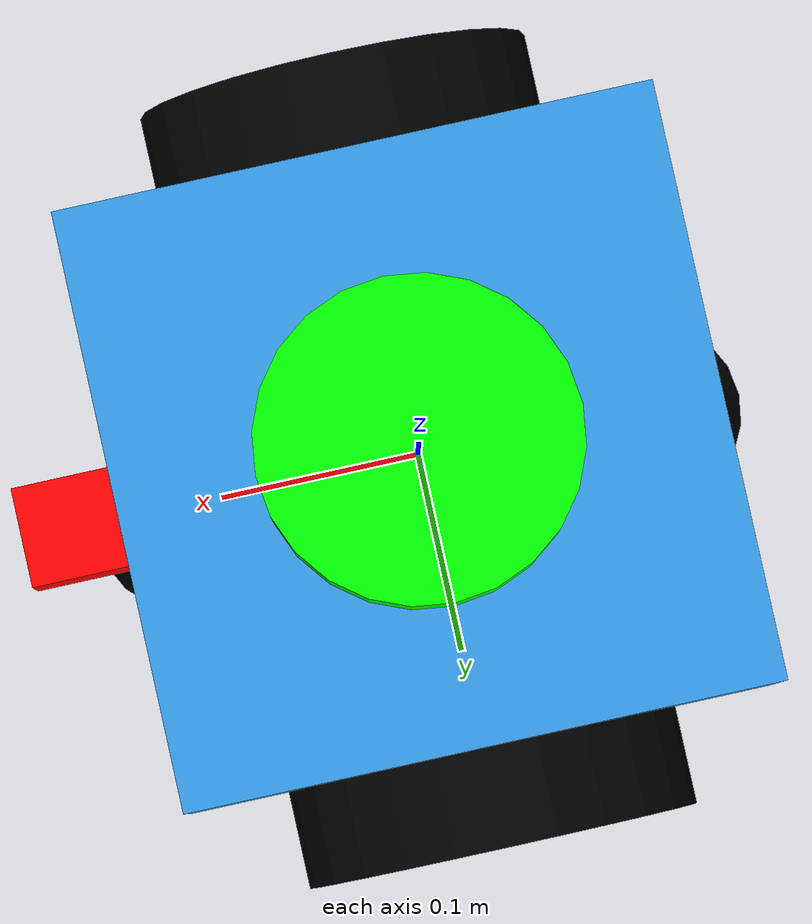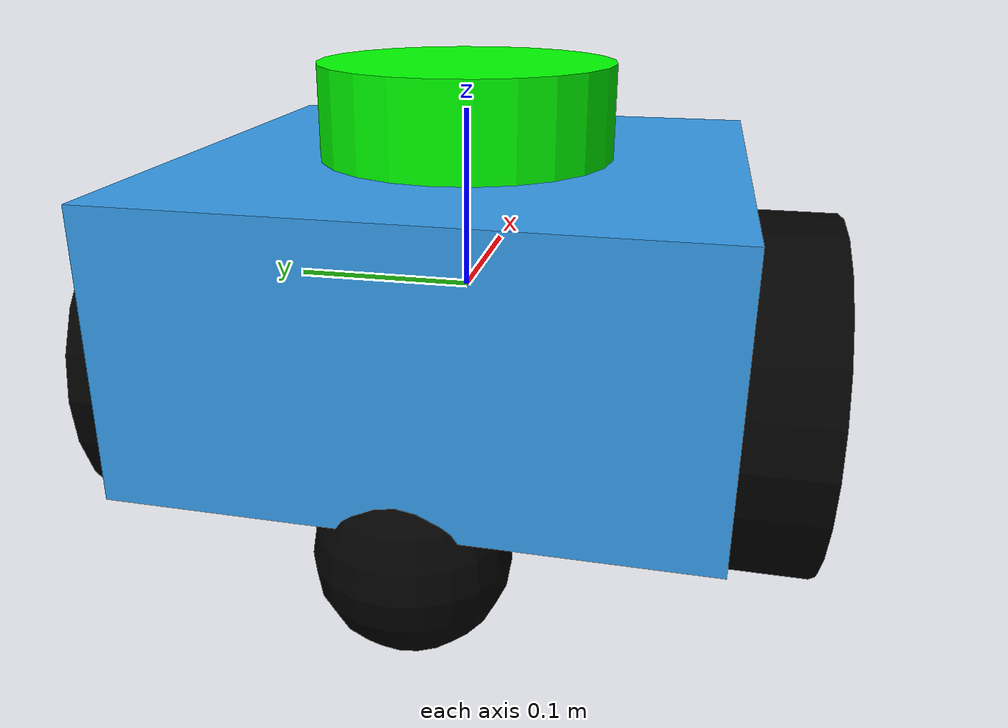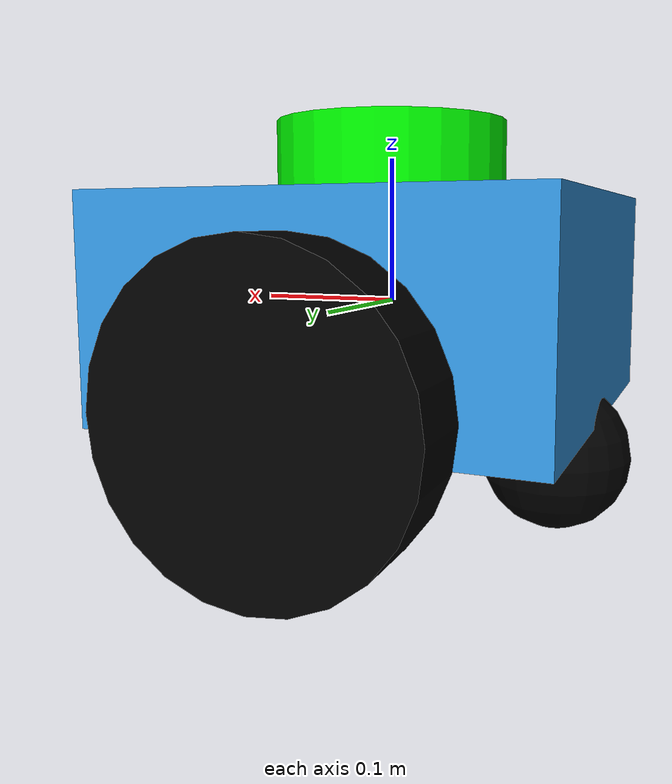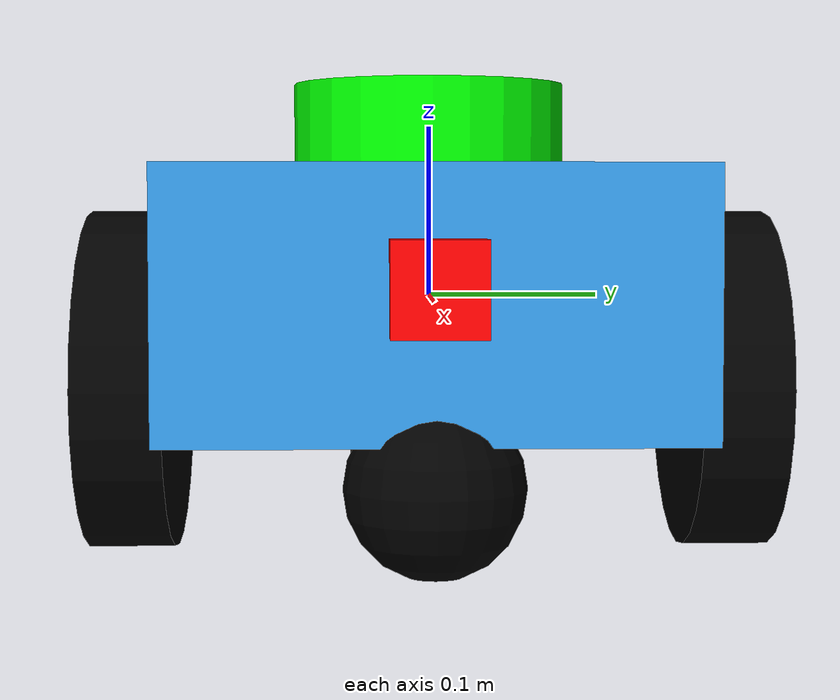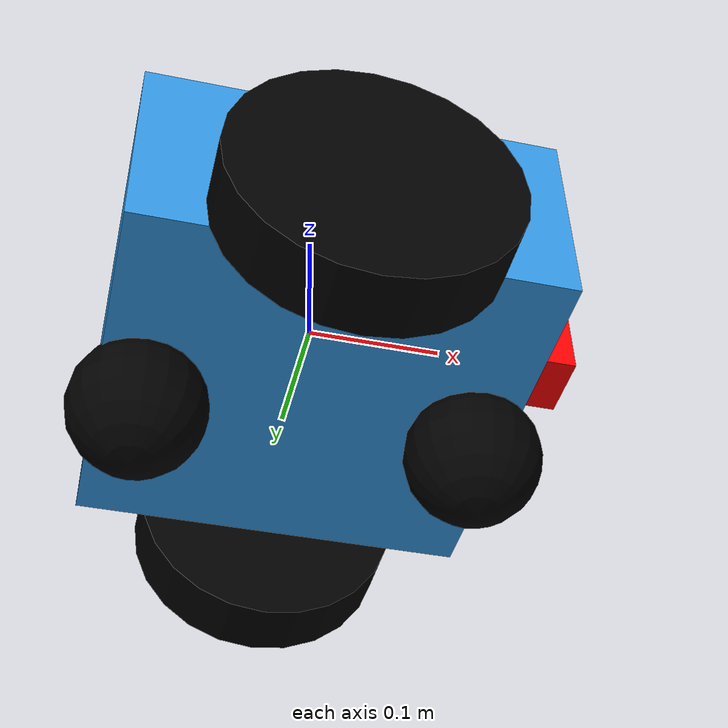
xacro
<?xml version="1.0"?>
<robot name="diffbot" xmlns:xacro="http://www.ros.org/wiki/xacro">

  <!-- Define common properties - Updated for 30x30cm chassis -->
  <xacro:property name="base_size" value="0.3 0.3 0.15"/>
  <xacro:property name="base_mass" value="5.0"/>
  <xacro:property name="base_inertia_val" value="0.02"/>

  <xacro:property name="wheel_radius_val" value="0.1"/>
  <xacro:property name="wheel_length_val" value="0.05"/>
  <xacro:property name="wheel_mass" value="0.5"/>
  <xacro:property name="wheel_inertia_val" value="0.01"/>
  <xacro:property name="wheel_separation" value="0.35"/>  <!-- Distance between wheels -->

  <xacro:property name="caster_radius_val" value="0.05"/>
  <xacro:property name="caster_mass" value="0.25"/>
  <xacro:property name="caster_inertia_val" value="0.01"/>

  <xacro:property name="camera_size" value="0.05 0.05 0.05"/>
  <xacro:property name="camera_mass" value="0.1"/>
  <xacro:property name="camera_inertia_val" value="0.001"/>
  <xacro:property name="camera_baseline" value="0.06"/>
  <xacro:property name="camera_height" value="0.10"/>
  <xacro:property name="camera_horizontal_fov" value="60"/>

  <xacro:property name="lidar_length_val" value="0.05"/>
  <xacro:property name="lidar_radius_val" value="0.08"/>
  <xacro:property name="lidar_mass" value="0.2"/>
  <xacro:property name="lidar_inertia_val" value="0.001"/>

  <xacro:arg name="camera_enabled" default="true" />

  <!-- Materials -->
  <material name="blue">
    <color rgba="0 0 0.8 1"/>
  </material>
  <material name="black">
    <color rgba="0 0 0 1"/>
  </material>
  <material name="white">
    <color rgba="1 1 1 1"/>
  </material>
  <material name="red">
    <color rgba="1 0 0 1"/>
  </material>
  <material name="green">
    <color rgba="0 1 0 1"/>
  </material>
  <material name="hospital_blue">
    <color rgba="0.2 0.6 0.9 1"/>
  </material>

  <!-- Base Link - 30x30cm chassis -->
  <link name="base_link">
    <visual>
      <geometry>
        <box size="${base_size}"/>
      </geometry>
      <material name="hospital_blue"/>
    </visual>
    <collision>
      <geometry>
        <box size="${base_size}"/>
      </geometry>
    </collision>
    <inertial>
      <mass value="${base_mass}"/>
      <inertia ixx="${base_inertia_val}" ixy="0" ixz="0" iyy="${base_inertia_val}" iyz="0" izz="${base_inertia_val}"/>
    </inertial>
  </link>

  <!-- Left Wheel -->
  <link name="left_wheel">
    <visual>
      <geometry>
        <cylinder length="${wheel_length_val}" radius="${wheel_radius_val}"/>
      </geometry>
      <material name="black"/>
    </visual>
    <collision>
      <geometry>
        <cylinder length="${wheel_length_val}" radius="${wheel_radius_val}"/>
      </geometry>
    </collision>
    <inertial>
      <mass value="${wheel_mass}"/>
      <inertia ixx="${wheel_inertia_val}" ixy="0" ixz="0" iyy="${wheel_inertia_val}" iyz="0" izz="${wheel_inertia_val}"/>
    </inertial>
  </link>

  <!-- Right Wheel -->
  <link name="right_wheel">
    <visual>
      <geometry>
        <cylinder length="${wheel_length_val}" radius="${wheel_radius_val}"/>
      </geometry>
      <material name="black"/>
    </visual>
    <collision>
      <geometry>
        <cylinder length="${wheel_length_val}" radius="${wheel_radius_val}"/>
      </geometry>
    </collision>
    <inertial>
      <mass value="${wheel_mass}"/>
      <inertia ixx="${wheel_inertia_val}" ixy="0" ixz="0" iyy="${wheel_inertia_val}" iyz="0" izz="${wheel_inertia_val}"/>
    </inertial>
  </link>

  <!-- Front Caster Wheel -->
  <link name="caster_wheel">
    <visual>
      <geometry>
        <sphere radius="${caster_radius_val}"/>
      </geometry>
      <material name="black"/>
    </visual>
    <collision>
      <geometry>
        <sphere radius="${caster_radius_val}"/>
      </geometry>
    </collision>
    <inertial>
      <mass value="${caster_mass}"/>
      <inertia ixx="${caster_inertia_val}" ixy="0" ixz="0" iyy="${caster_inertia_val}" iyz="0" izz="${caster_inertia_val}"/>
    </inertial>
  </link>

  <!-- Back Caster Wheel -->
  <link name="caster_wheel2">
    <visual>
      <geometry>
        <sphere radius="${caster_radius_val}"/>
      </geometry>
      <material name="black"/>
    </visual>
    <collision>
      <geometry>
        <sphere radius="${caster_radius_val}"/>
      </geometry>
    </collision>
    <inertial>
      <mass value="${caster_mass}"/>
      <inertia ixx="${caster_inertia_val}" ixy="0" ixz="0" iyy="${caster_inertia_val}" iyz="0" izz="${caster_inertia_val}"/>
    </inertial>
  </link>

  <!-- RGB-D Camera for object detection -->
  <link name="camera1">
    <visual>
      <geometry>
        <box size="${camera_size}"/>
      </geometry>
      <material name="red"/>
    </visual>
    <collision>
      <geometry>
        <box size="${camera_size}"/>
      </geometry>
    </collision>
    <inertial>
      <mass value="${camera_mass}"/>
      <inertia ixx="${camera_inertia_val}" ixy="0" ixz="0" iyy="${camera_inertia_val}" iyz="0" izz="${camera_inertia_val}"/>
    </inertial>
  </link>

  <!-- LiDAR for SLAM and navigation -->
  <link name="lidar">
    <visual>
      <geometry>
        <cylinder length="${lidar_length_val}" radius="${lidar_radius_val}"/>
      </geometry>
      <material name="green"/>
    </visual>
    <collision>
      <geometry>
        <cylinder length="${lidar_length_val}" radius="${lidar_radius_val}"/>
      </geometry>
    </collision>
    <inertial>
      <mass value="${lidar_mass}"/>
      <inertia ixx="${lidar_inertia_val}" ixy="0" ixz="0" iyy="${lidar_inertia_val}" iyz="0" izz="${lidar_inertia_val}"/>
    </inertial>
  </link>

  <!-- Joints -->

  <!-- Left Wheel Joint - Positioned for 30cm chassis -->
  <joint name="left_wheel_joint" type="continuous">
    <parent link="base_link"/>
    <child link="left_wheel"/>
    <!-- Position: half of wheel_separation distance from center -->
    <origin xyz="0 ${wheel_separation/2} -0.05" rpy="-1.5708 0 0"/>
    <axis xyz="0 0 1"/>
  </joint>

  <!-- Right Wheel Joint - Positioned for 30cm chassis -->
  <joint name="right_wheel_joint" type="continuous">
    <parent link="base_link"/>
    <child link="right_wheel"/>
    <!-- Position: negative half of wheel_separation distance from center -->
    <origin xyz="0 -${wheel_separation/2} -0.05" rpy="-1.5708 0 0"/>
    <axis xyz="0 0 1"/>
  </joint>

  <!-- Front Caster Wheel Joint - Positioned for 30cm chassis -->
  <joint name="caster_wheel_joint" type="fixed">
    <parent link="base_link"/>
    <child link="caster_wheel"/>
    <!-- Position: 12cm forward from center (leaving 3cm margin from edge) -->
    <origin xyz="0.12 0 -0.1"/>
    <axis xyz="0 0 1"/>
  </joint>

  <!-- Back Caster Wheel Joint - Positioned for 30cm chassis -->
  <joint name="caster_wheel_joint2" type="fixed">
    <parent link="base_link"/>
    <child link="caster_wheel2"/>
    <!-- Position: 12cm backward from center (leaving 3cm margin from edge) -->
    <origin xyz="-0.12 0 -0.1"/>
    <axis xyz="0 0 1"/>
  </joint>

  <!-- Camera Joint - Mounted at front for object detection -->
  <joint name="camera_joint" type="fixed">
    <parent link="base_link"/>
    <child link="camera1"/>
    <!-- Position: at front edge of 30cm chassis -->
    <origin xyz="0.175 0 0.01" rpy="0 0 0"/>
    <axis xyz="0 0 1"/>
  </joint>

  <!-- Lidar Joint - Centered on top for 360° coverage -->
  <joint name="lidar_joint" type="fixed">
    <parent link="base_link"/>
    <child link="lidar"/>
    <origin xyz="0 0 0.1" rpy="0 0 0"/>
    <axis xyz="0 0 1"/>
  </joint>

  <!-- Gazebo Visuals and Friction Parameters -->
  <gazebo reference="base_link">
    <material>Gazebo/Blue</material>
  </gazebo>

  <gazebo reference="left_wheel">
    <material>Gazebo/Black</material>
    <mu1 value="1.0"/>
    <mu2 value="1.0"/>
  </gazebo>

  <gazebo reference="right_wheel">
    <material>Gazebo/Black</material>
    <mu1 value="1.0"/>
    <mu2 value="1.0"/>
  </gazebo>

  <gazebo reference="caster_wheel">
    <material>Gazebo/Black</material>
    <mu1 value="0.5"/>
    <mu2 value="0.5"/>
    <kp>1000000000000000</kp>
    <kd>1000000000000000</kd>
  </gazebo>

  <gazebo reference="caster_wheel2">
    <material>Gazebo/Black</material>
    <mu1 value="0.5"/>
    <mu2 value="0.5"/>
    <kp>1000000000000000</kp>
    <kd>1000000000000000</kd>
  </gazebo>

  <gazebo reference="camera1">
    <material>Gazebo/Red</material>
  </gazebo>

  <gazebo reference="lidar">
    <material>Gazebo/Green</material>
  </gazebo>

  <!-- Gazebo Plugin for Differential Drive -->
  <gazebo>

    <plugin filename="gz-sim-sensors-system" name="gz::sim::systems::Sensors">
            <render_engine>ogre2</render_engine>
    </plugin>

    <plugin filename="gz-sim-diff-drive-system" name="gz::sim::systems::DiffDrive">
            <left_joint>left_wheel_joint</left_joint>
            <right_joint>right_wheel_joint</right_joint>
            <!-- Updated wheel separation for 30cm chassis -->
            <wheel_separation>${wheel_separation}</wheel_separation>
            <wheel_radius>${wheel_radius_val}</wheel_radius>
            <odom_publish_frequency>30</odom_publish_frequency>
            <max_wheel_torque>10.0</max_wheel_torque>
            <max_wheel_acceleration>100</max_wheel_acceleration>
            <topic>/cmd_vel</topic>
            <odom_topic>/odom</odom_topic>
            <frame_id>odom</frame_id>
            <child_frame_id>base_link</child_frame_id>
    </plugin>

    <plugin filename="gz-sim-joint-state-publisher-system" name="gz::sim::systems::JointStatePublisher">
      <update_rate>50</update_rate>
      <joint_name>left_wheel_joint</joint_name>
      <joint_name>right_wheel_joint</joint_name>
      <topic>joint_states</topic>
      <update_rate>30</update_rate>
    </plugin>

    <plugin filename="gz-sim-odometry-publisher-system" name="gz::sim::systems::OdometryPublisher">
      <odom_frame>odom</odom_frame>
      <robot_base_frame>base_link</robot_base_frame>
      <odom_topic>/odom</odom_topic>
      <tf_topic>/tf</tf_topic>
      <dimensions>2</dimensions>
      <odom_publish_frequency>10</odom_publish_frequency>
    </plugin>
  </gazebo>

  <!-- RGB-D Camera Sensor Plugin -->
  <xacro:if value="$(arg camera_enabled)">
          <gazebo reference="camera1">
              <sensor type="depth_camera" name="camera">
                  <update_rate>30.0</update_rate>
                  <topic>camera</topic>
                  <gz_frame_id>camera1</gz_frame_id>
                  <camera>
                      <camera_info_topic>camera/camera_info</camera_info_topic>
                      <horizontal_fov>${radians(camera_horizontal_fov)}</horizontal_fov>
                      <image>
                          <width>640</width>
                          <height>480</height>
                          <format>R8G8B8</format>
                      </image>
                      <clip>
                          <near>0.05</near>
                          <far>8.0</far>
                      </clip>
                  </camera>
              </sensor>
          </gazebo>
  </xacro:if>

  <!-- LiDAR Sensor Plugin -->
  <gazebo reference="lidar">
        <sensor name='gpu_lidar' type='gpu_lidar'>
            <topic>scan</topic>
            <update_rate>30</update_rate>
            <gz_frame_id>lidar</gz_frame_id>
            <lidar>
                <scan>
                    <horizontal>
                        <samples>360</samples>
                        <resolution>1</resolution>
                        <min_angle>-3.14</min_angle>
                        <max_angle>3.14</max_angle>
                    </horizontal>
                </scan>
                <range>
                    <min>0.05</min>
                    <max>20.0</max>
                    <resolution>0.01</resolution>
                </range>
                <noise>
                    <type>gaussian</type>
                    <mean>0.0</mean>
                    <stddev>0.001</stddev>
                </noise>
            </lidar>
            <always_on>1</always_on>
            <visualize>true</visualize>
        </sensor>
  </gazebo>
</robot>
